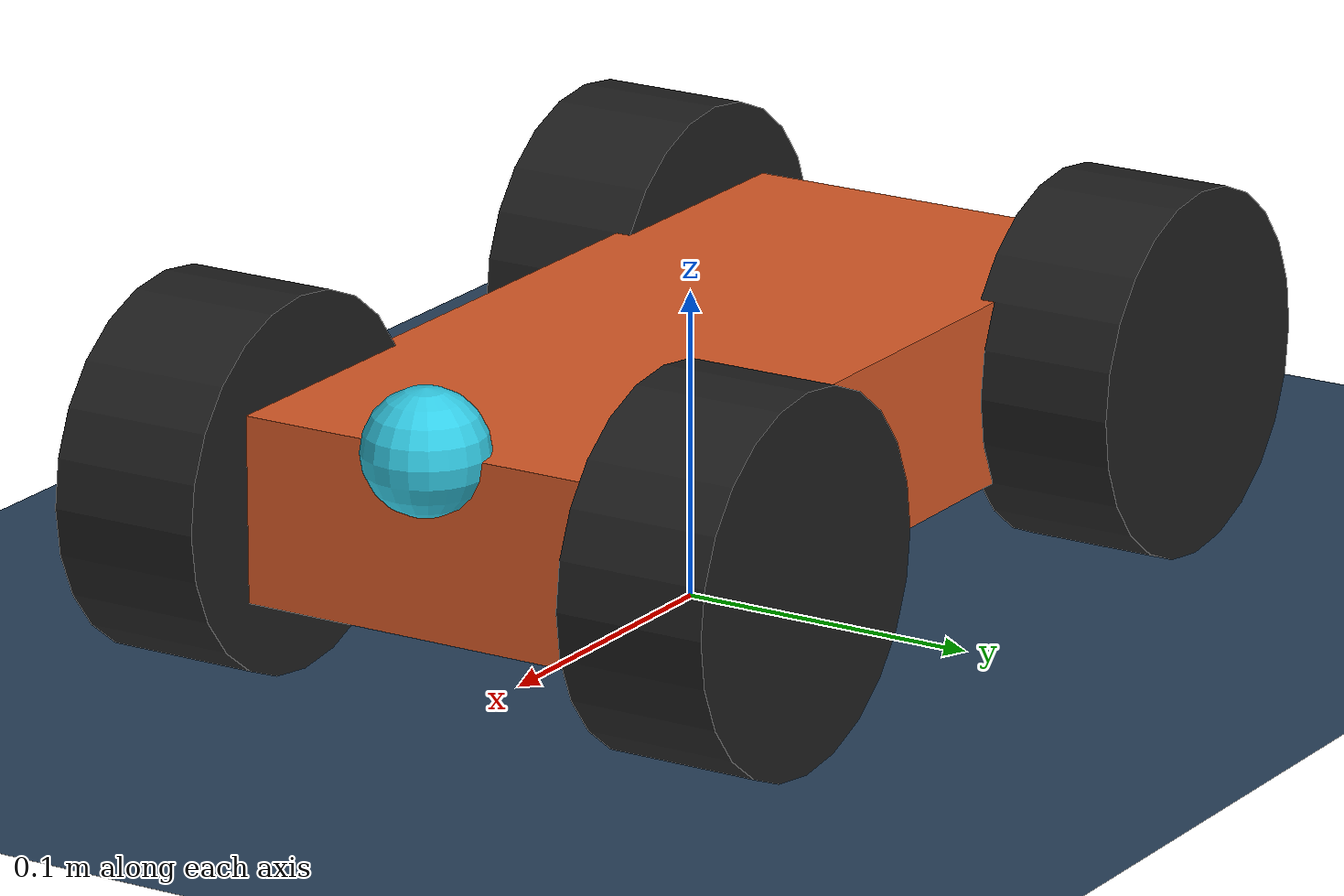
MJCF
<mujoco model="Rover">
  <option timestep="0.005"/>

  <visual>
    <rgba haze="0.15 0.25 0.35 1"/>
    <global elevation="-20" azimuth="120"/>
  </visual>

  <statistic center="0 0 0.15"/>

  <asset>
    <texture type="skybox" builtin="gradient" rgb1=".3 .5 .7" rgb2="0 0 0" width="32" height="512"/>
    <texture name="grid" type="2d" builtin="checker" width="512" height="512" rgb1=".1 .2 .3" rgb2=".2 .3 .4"/>
    <material name="grid" texture="grid" texrepeat="1 1" texuniform="true" reflectance=".2"/>
    <material name="chassis" rgba="0.85 0.35 0.15 1"/>
    <material name="wheel" rgba="0.12 0.12 0.12 1"/>
    <material name="sensor" rgba="0.2 0.8 0.9 1"/>
  </asset>

  <default>
    <joint damping="0.2"/>
    <default class="wheel">
      <joint type="hinge" axis="0 1 0" damping="0.05"/>
      <geom type="cylinder" size="0.06 0.025" quat="0.7071068 0.7071068 0 0" material="wheel" condim="4" friction="1.2 0.006 0.0001"/>
    </default>
  </default>

  <worldbody>
    <geom name="floor" size="0 0 .05" type="plane" material="grid" condim="3"/>
    <light name="top" pos="0 0 2" mode="trackcom"/>

    <body name="chassis" pos="0 0 0.06">
      <freejoint name="root"/>
      <geom name="chassis" type="box" size="0.15 0.07 0.03" material="chassis" mass="1.2"/>
      <geom name="sensor" type="sphere" size="0.02" pos="0.15 0 0.03" material="sensor" mass="0.02"/>

      <body name="wheel_fl" pos="0.12 0.09 0">
        <joint name="wheel_fl" class="wheel"/>
        <geom class="wheel" mass="0.15"/>
      </body>
      <body name="wheel_fr" pos="0.12 -0.09 0">
        <joint name="wheel_fr" class="wheel"/>
        <geom class="wheel" mass="0.15"/>
      </body>
      <body name="wheel_rl" pos="-0.12 0.09 0">
        <joint name="wheel_rl" class="wheel"/>
        <geom class="wheel" mass="0.15"/>
      </body>
      <body name="wheel_rr" pos="-0.12 -0.09 0">
        <joint name="wheel_rr" class="wheel"/>
        <geom class="wheel" mass="0.15"/>
      </body>
    </body>
  </worldbody>

  <actuator>
    <motor name="wheel_fl" joint="wheel_fl" gear="1" ctrlrange="-1 1"/>
    <motor name="wheel_fr" joint="wheel_fr" gear="1" ctrlrange="-1 1"/>
    <motor name="wheel_rl" joint="wheel_rl" gear="1" ctrlrange="-1 1"/>
    <motor name="wheel_rr" joint="wheel_rr" gear="1" ctrlrange="-1 1"/>
  </actuator>
</mujoco>
